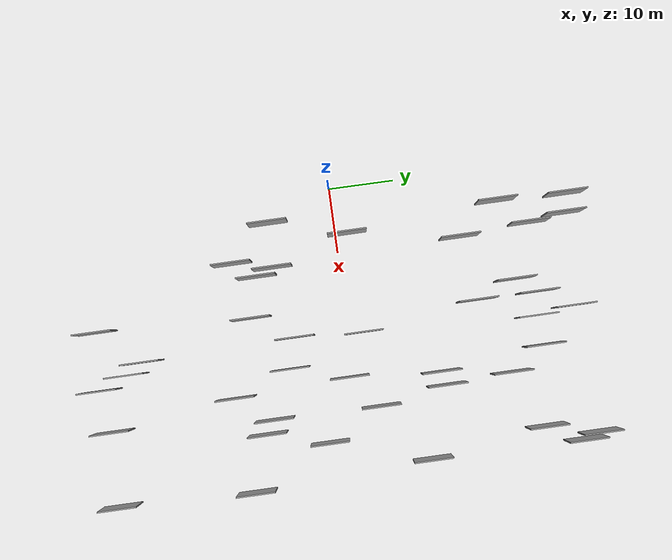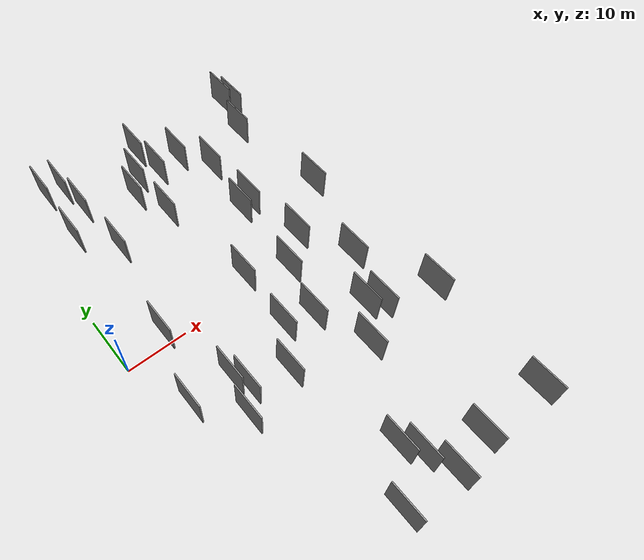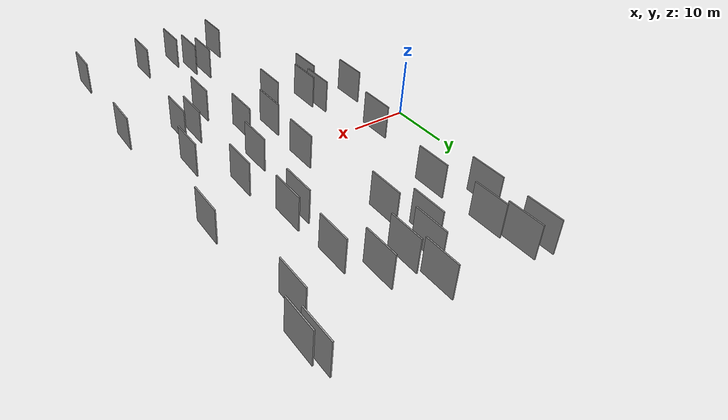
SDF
<sdf version="1.6">
 <world name="default">
  <scene>
   <sky><clouds><speed>12</speed></clouds></sky>
   <ambient>0.4 0.4 0.4 1</ambient>
   <background>0.7 0.7 0.7 1</background>
   <shadows>1</shadows>
  </scene>
  <gravity>0 0 -9.8066</gravity>
  <magnetic_field>6e-06 2.3e-05 -4.2e-05</magnetic_field>
  <physics default="0" name="default_physics" type="ode">
   <ode>
    <solver>
     <type>quick</type>
     <iters>10</iters>
     <sor>1.0</sor>
     <use_dynamic_moi_rescaling>0</use_dynamic_moi_rescaling>
    </solver>
    <constraints>
     <cfm>0</cfm>
     <erp>0.2</erp>
     <contact_max_correcting_vel>100</contact_max_correcting_vel>
     <contact_surface_layer>0.001</contact_surface_layer>
    </constraints>
   </ode>
   <max_step_size>0.004</max_step_size>
   <real_time_factor>1</real_time_factor>
   <real_time_update_rate>250</real_time_update_rate>
  </physics>
  <light name="sun" type="directional">
   <pose>0 0 10 0 0 0</pose>
   <diffuse>0.8 0.8 0.8 1</diffuse>
   <specular>0.2 0.2 0.2 1</specular>
   <attenuation>
    <range>1000</range>
    <constant>0.9</constant>
    <linear>0.01</linear>
    <quadratic>0.001</quadratic>
   </attenuation>
   <direction>-0.5 0.1 -0.9</direction>
  </light>
  <model name="grey_wall_1">
   <static>1</static>
   <pose>22.6917 -31.9498 0.0 0.000000 0.000000 1.570796</pose>
   <link name="link">
    <pose>0 0 3.00 0 0 0</pose>
    <collision name="collision"><geometry><box><size>6.00 0.2 6.00</size></box></geometry></collision>
    <visual name="visual">
     <cast_shadows>0</cast_shadows>
     <geometry><box><size>6.00 0.2 6.00</size></box></geometry>
     <material>
      <script>
       <uri>model://grey_wall/materials/scripts</uri>
       <uri>model://grey_wall/materials/textures</uri>
       <name>vrc/grey_wall</name>
      </script>
     </material>
    </visual>
   </link>
  </model>
  <model name="grey_wall_2">
   <static>1</static>
   <pose>20.2446 29.4621 0.0 0.000000 0.000000 1.570796</pose>
   <link name="link">
    <pose>0 0 3.00 0 0 0</pose>
    <collision name="collision"><geometry><box><size>6.00 0.2 6.00</size></box></geometry></collision>
    <visual name="visual">
     <cast_shadows>0</cast_shadows>
     <geometry><box><size>6.00 0.2 6.00</size></box></geometry>
     <material>
      <script>
       <uri>model://grey_wall/materials/scripts</uri>
       <uri>model://grey_wall/materials/textures</uri>
       <name>vrc/grey_wall</name>
      </script>
     </material>
    </visual>
   </link>
  </model>
  <model name="grey_wall_3">
   <static>1</static>
   <pose>44.1702 -38.2884 0.0 0.000000 0.000000 1.570796</pose>
   <link name="link">
    <pose>0 0 3.00 0 0 0</pose>
    <collision name="collision"><geometry><box><size>6.00 0.2 6.00</size></box></geometry></collision>
    <visual name="visual">
     <cast_shadows>0</cast_shadows>
     <geometry><box><size>6.00 0.2 6.00</size></box></geometry>
     <material>
      <script>
       <uri>model://grey_wall/materials/scripts</uri>
       <uri>model://grey_wall/materials/textures</uri>
       <name>vrc/grey_wall</name>
      </script>
     </material>
    </visual>
   </link>
  </model>
  <model name="grey_wall_4">
   <static>1</static>
   <pose>43.6332 33.7527 0.0 0.000000 0.000000 1.570796</pose>
   <link name="link">
    <pose>0 0 3.00 0 0 0</pose>
    <collision name="collision"><geometry><box><size>6.00 0.2 6.00</size></box></geometry></collision>
    <visual name="visual">
     <cast_shadows>0</cast_shadows>
     <geometry><box><size>6.00 0.2 6.00</size></box></geometry>
     <material>
      <script>
       <uri>model://grey_wall/materials/scripts</uri>
       <uri>model://grey_wall/materials/textures</uri>
       <name>vrc/grey_wall</name>
      </script>
     </material>
    </visual>
   </link>
  </model>
  <model name="grey_wall_5">
   <static>1</static>
   <pose>29.2713 -0.7865 0.0 0.000000 0.000000 1.570796</pose>
   <link name="link">
    <pose>0 0 3.00 0 0 0</pose>
    <collision name="collision"><geometry><box><size>6.00 0.2 6.00</size></box></geometry></collision>
    <visual name="visual">
     <cast_shadows>0</cast_shadows>
     <geometry><box><size>6.00 0.2 6.00</size></box></geometry>
     <material>
      <script>
       <uri>model://grey_wall/materials/scripts</uri>
       <uri>model://grey_wall/materials/textures</uri>
       <name>vrc/grey_wall</name>
      </script>
     </material>
    </visual>
   </link>
  </model>
  <model name="grey_wall_6">
   <static>1</static>
   <pose>22.1243 -8.2545 0.0 0.000000 0.000000 1.570796</pose>
   <link name="link">
    <pose>0 0 3.00 0 0 0</pose>
    <collision name="collision"><geometry><box><size>6.00 0.2 6.00</size></box></geometry></collision>
    <visual name="visual">
     <cast_shadows>0</cast_shadows>
     <geometry><box><size>6.00 0.2 6.00</size></box></geometry>
     <material>
      <script>
       <uri>model://grey_wall/materials/scripts</uri>
       <uri>model://grey_wall/materials/textures</uri>
       <name>vrc/grey_wall</name>
      </script>
     </material>
    </visual>
   </link>
  </model>
  <model name="grey_wall_7">
   <static>1</static>
   <pose>9.5322 29.6135 0.0 0.000000 0.000000 1.570796</pose>
   <link name="link">
    <pose>0 0 3.00 0 0 0</pose>
    <collision name="collision"><geometry><box><size>6.00 0.2 6.00</size></box></geometry></collision>
    <visual name="visual">
     <cast_shadows>0</cast_shadows>
     <geometry><box><size>6.00 0.2 6.00</size></box></geometry>
     <material>
      <script>
       <uri>model://grey_wall/materials/scripts</uri>
       <uri>model://grey_wall/materials/textures</uri>
       <name>vrc/grey_wall</name>
      </script>
     </material>
    </visual>
   </link>
  </model>
  <model name="grey_wall_8">
   <static>1</static>
   <pose>23.8840 28.7918 0.0 0.000000 0.000000 1.570796</pose>
   <link name="link">
    <pose>0 0 3.00 0 0 0</pose>
    <collision name="collision"><geometry><box><size>6.00 0.2 6.00</size></box></geometry></collision>
    <visual name="visual">
     <cast_shadows>0</cast_shadows>
     <geometry><box><size>6.00 0.2 6.00</size></box></geometry>
     <material>
      <script>
       <uri>model://grey_wall/materials/scripts</uri>
       <uri>model://grey_wall/materials/textures</uri>
       <name>vrc/grey_wall</name>
      </script>
     </material>
    </visual>
   </link>
  </model>
  <model name="grey_wall_9">
   <static>1</static>
   <pose>34.3132 3.4054 0.0 0.000000 0.000000 1.570796</pose>
   <link name="link">
    <pose>0 0 3.00 0 0 0</pose>
    <collision name="collision"><geometry><box><size>6.00 0.2 6.00</size></box></geometry></collision>
    <visual name="visual">
     <cast_shadows>0</cast_shadows>
     <geometry><box><size>6.00 0.2 6.00</size></box></geometry>
     <material>
      <script>
       <uri>model://grey_wall/materials/scripts</uri>
       <uri>model://grey_wall/materials/textures</uri>
       <name>vrc/grey_wall</name>
      </script>
     </material>
    </visual>
   </link>
  </model>
  <model name="grey_wall_10">
   <static>1</static>
   <pose>30.1226 -18.4739 0.0 0.000000 0.000000 1.570796</pose>
   <link name="link">
    <pose>0 0 3.00 0 0 0</pose>
    <collision name="collision"><geometry><box><size>6.00 0.2 6.00</size></box></geometry></collision>
    <visual name="visual">
     <cast_shadows>0</cast_shadows>
     <geometry><box><size>6.00 0.2 6.00</size></box></geometry>
     <material>
      <script>
       <uri>model://grey_wall/materials/scripts</uri>
       <uri>model://grey_wall/materials/textures</uri>
       <name>vrc/grey_wall</name>
      </script>
     </material>
    </visual>
   </link>
  </model>
  <model name="grey_wall_11">
   <static>1</static>
   <pose>28.4479 29.3044 0.0 0.000000 0.000000 1.570796</pose>
   <link name="link">
    <pose>0 0 3.00 0 0 0</pose>
    <collision name="collision"><geometry><box><size>6.00 0.2 6.00</size></box></geometry></collision>
    <visual name="visual">
     <cast_shadows>0</cast_shadows>
     <geometry><box><size>6.00 0.2 6.00</size></box></geometry>
     <material>
      <script>
       <uri>model://grey_wall/materials/scripts</uri>
       <uri>model://grey_wall/materials/textures</uri>
       <name>vrc/grey_wall</name>
      </script>
     </material>
    </visual>
   </link>
  </model>
  <model name="grey_wall_12">
   <static>1</static>
   <pose>42.7984 36.0896 0.0 0.000000 0.000000 1.570796</pose>
   <link name="link">
    <pose>0 0 3.00 0 0 0</pose>
    <collision name="collision"><geometry><box><size>6.00 0.2 6.00</size></box></geometry></collision>
    <visual name="visual">
     <cast_shadows>0</cast_shadows>
     <geometry><box><size>6.00 0.2 6.00</size></box></geometry>
     <material>
      <script>
       <uri>model://grey_wall/materials/scripts</uri>
       <uri>model://grey_wall/materials/textures</uri>
       <name>vrc/grey_wall</name>
      </script>
     </material>
    </visual>
   </link>
  </model>
  <model name="grey_wall_13">
   <static>1</static>
   <pose>5.8683 35.6910 0.0 0.000000 0.000000 1.570796</pose>
   <link name="link">
    <pose>0 0 3.00 0 0 0</pose>
    <collision name="collision"><geometry><box><size>6.00 0.2 6.00</size></box></geometry></collision>
    <visual name="visual">
     <cast_shadows>0</cast_shadows>
     <geometry><box><size>6.00 0.2 6.00</size></box></geometry>
     <material>
      <script>
       <uri>model://grey_wall/materials/scripts</uri>
       <uri>model://grey_wall/materials/textures</uri>
       <name>vrc/grey_wall</name>
      </script>
     </material>
    </visual>
   </link>
  </model>
  <model name="grey_wall_14">
   <static>1</static>
   <pose>24.3552 -34.5578 0.0 0.000000 0.000000 1.570796</pose>
   <link name="link">
    <pose>0 0 3.00 0 0 0</pose>
    <collision name="collision"><geometry><box><size>6.00 0.2 6.00</size></box></geometry></collision>
    <visual name="visual">
     <cast_shadows>0</cast_shadows>
     <geometry><box><size>6.00 0.2 6.00</size></box></geometry>
     <material>
      <script>
       <uri>model://grey_wall/materials/scripts</uri>
       <uri>model://grey_wall/materials/textures</uri>
       <name>vrc/grey_wall</name>
      </script>
     </material>
    </visual>
   </link>
  </model>
  <model name="grey_wall_15">
   <static>1</static>
   <pose>9.6066 -16.3142 0.0 0.000000 0.000000 1.570796</pose>
   <link name="link">
    <pose>0 0 3.00 0 0 0</pose>
    <collision name="collision"><geometry><box><size>6.00 0.2 6.00</size></box></geometry></collision>
    <visual name="visual">
     <cast_shadows>0</cast_shadows>
     <geometry><box><size>6.00 0.2 6.00</size></box></geometry>
     <material>
      <script>
       <uri>model://grey_wall/materials/scripts</uri>
       <uri>model://grey_wall/materials/textures</uri>
       <name>vrc/grey_wall</name>
      </script>
     </material>
    </visual>
   </link>
  </model>
  <model name="grey_wall_16">
   <static>1</static>
   <pose>10.2562 18.8156 0.0 0.000000 0.000000 1.570796</pose>
   <link name="link">
    <pose>0 0 3.00 0 0 0</pose>
    <collision name="collision"><geometry><box><size>6.00 0.2 6.00</size></box></geometry></collision>
    <visual name="visual">
     <cast_shadows>0</cast_shadows>
     <geometry><box><size>6.00 0.2 6.00</size></box></geometry>
     <material>
      <script>
       <uri>model://grey_wall/materials/scripts</uri>
       <uri>model://grey_wall/materials/textures</uri>
       <name>vrc/grey_wall</name>
      </script>
     </material>
    </visual>
   </link>
  </model>
  <model name="grey_wall_17">
   <static>1</static>
   <pose>40.8270 28.1139 0.0 0.000000 0.000000 1.570796</pose>
   <link name="link">
    <pose>0 0 3.00 0 0 0</pose>
    <collision name="collision"><geometry><box><size>6.00 0.2 6.00</size></box></geometry></collision>
    <visual name="visual">
     <cast_shadows>0</cast_shadows>
     <geometry><box><size>6.00 0.2 6.00</size></box></geometry>
     <material>
      <script>
       <uri>model://grey_wall/materials/scripts</uri>
       <uri>model://grey_wall/materials/textures</uri>
       <name>vrc/grey_wall</name>
      </script>
     </material>
    </visual>
   </link>
  </model>
  <model name="grey_wall_18">
   <static>1</static>
   <pose>31.8973 23.8797 0.0 0.000000 0.000000 1.570796</pose>
   <link name="link">
    <pose>0 0 3.00 0 0 0</pose>
    <collision name="collision"><geometry><box><size>6.00 0.2 6.00</size></box></geometry></collision>
    <visual name="visual">
     <cast_shadows>0</cast_shadows>
     <geometry><box><size>6.00 0.2 6.00</size></box></geometry>
     <material>
      <script>
       <uri>model://grey_wall/materials/scripts</uri>
       <uri>model://grey_wall/materials/textures</uri>
       <name>vrc/grey_wall</name>
      </script>
     </material>
    </visual>
   </link>
  </model>
  <model name="grey_wall_19">
   <static>1</static>
   <pose>7.3207 1.8135 0.0 0.000000 0.000000 1.570796</pose>
   <link name="link">
    <pose>0 0 3.00 0 0 0</pose>
    <collision name="collision"><geometry><box><size>6.00 0.2 6.00</size></box></geometry></collision>
    <visual name="visual">
     <cast_shadows>0</cast_shadows>
     <geometry><box><size>6.00 0.2 6.00</size></box></geometry>
     <material>
      <script>
       <uri>model://grey_wall/materials/scripts</uri>
       <uri>model://grey_wall/materials/textures</uri>
       <name>vrc/grey_wall</name>
      </script>
     </material>
    </visual>
   </link>
  </model>
  <model name="grey_wall_20">
   <static>1</static>
   <pose>5.5236 25.0917 0.0 0.000000 0.000000 1.570796</pose>
   <link name="link">
    <pose>0 0 3.00 0 0 0</pose>
    <collision name="collision"><geometry><box><size>6.00 0.2 6.00</size></box></geometry></collision>
    <visual name="visual">
     <cast_shadows>0</cast_shadows>
     <geometry><box><size>6.00 0.2 6.00</size></box></geometry>
     <material>
      <script>
       <uri>model://grey_wall/materials/scripts</uri>
       <uri>model://grey_wall/materials/textures</uri>
       <name>vrc/grey_wall</name>
      </script>
     </material>
    </visual>
   </link>
  </model>
  <model name="grey_wall_21">
   <static>1</static>
   <pose>17.8645 26.3139 0.0 0.000000 0.000000 1.570796</pose>
   <link name="link">
    <pose>0 0 3.00 0 0 0</pose>
    <collision name="collision"><geometry><box><size>6.00 0.2 6.00</size></box></geometry></collision>
    <visual name="visual">
     <cast_shadows>0</cast_shadows>
     <geometry><box><size>6.00 0.2 6.00</size></box></geometry>
     <material>
      <script>
       <uri>model://grey_wall/materials/scripts</uri>
       <uri>model://grey_wall/materials/textures</uri>
       <name>vrc/grey_wall</name>
      </script>
     </material>
    </visual>
   </link>
  </model>
  <model name="grey_wall_22">
   <static>1</static>
   <pose>34.1734 -13.0165 0.0 0.000000 0.000000 1.570796</pose>
   <link name="link">
    <pose>0 0 3.00 0 0 0</pose>
    <collision name="collision"><geometry><box><size>6.00 0.2 6.00</size></box></geometry></collision>
    <visual name="visual">
     <cast_shadows>0</cast_shadows>
     <geometry><box><size>6.00 0.2 6.00</size></box></geometry>
     <material>
      <script>
       <uri>model://grey_wall/materials/scripts</uri>
       <uri>model://grey_wall/materials/textures</uri>
       <name>vrc/grey_wall</name>
      </script>
     </material>
    </visual>
   </link>
  </model>
  <model name="grey_wall_23">
   <static>1</static>
   <pose>12.0930 -12.8128 0.0 0.000000 0.000000 1.570796</pose>
   <link name="link">
    <pose>0 0 3.00 0 0 0</pose>
    <collision name="collision"><geometry><box><size>6.00 0.2 6.00</size></box></geometry></collision>
    <visual name="visual">
     <cast_shadows>0</cast_shadows>
     <geometry><box><size>6.00 0.2 6.00</size></box></geometry>
     <material>
      <script>
       <uri>model://grey_wall/materials/scripts</uri>
       <uri>model://grey_wall/materials/textures</uri>
       <name>vrc/grey_wall</name>
      </script>
     </material>
    </visual>
   </link>
  </model>
  <model name="grey_wall_24">
   <static>1</static>
   <pose>22.7495 2.2998 0.0 0.000000 0.000000 1.570796</pose>
   <link name="link">
    <pose>0 0 3.00 0 0 0</pose>
    <collision name="collision"><geometry><box><size>6.00 0.2 6.00</size></box></geometry></collision>
    <visual name="visual">
     <cast_shadows>0</cast_shadows>
     <geometry><box><size>6.00 0.2 6.00</size></box></geometry>
     <material>
      <script>
       <uri>model://grey_wall/materials/scripts</uri>
       <uri>model://grey_wall/materials/textures</uri>
       <name>vrc/grey_wall</name>
      </script>
     </material>
    </visual>
   </link>
  </model>
  <model name="grey_wall_25">
   <static>1</static>
   <pose>20.2519 20.1538 0.0 0.000000 0.000000 1.570796</pose>
   <link name="link">
    <pose>0 0 3.00 0 0 0</pose>
    <collision name="collision"><geometry><box><size>6.00 0.2 6.00</size></box></geometry></collision>
    <visual name="visual">
     <cast_shadows>0</cast_shadows>
     <geometry><box><size>6.00 0.2 6.00</size></box></geometry>
     <material>
      <script>
       <uri>model://grey_wall/materials/scripts</uri>
       <uri>model://grey_wall/materials/textures</uri>
       <name>vrc/grey_wall</name>
      </script>
     </material>
    </visual>
   </link>
  </model>
  <model name="grey_wall_26">
   <static>1</static>
   <pose>4.1584 -10.0280 0.0 0.000000 0.000000 1.570796</pose>
   <link name="link">
    <pose>0 0 3.00 0 0 0</pose>
    <collision name="collision"><geometry><box><size>6.00 0.2 6.00</size></box></geometry></collision>
    <visual name="visual">
     <cast_shadows>0</cast_shadows>
     <geometry><box><size>6.00 0.2 6.00</size></box></geometry>
     <material>
      <script>
       <uri>model://grey_wall/materials/scripts</uri>
       <uri>model://grey_wall/materials/textures</uri>
       <name>vrc/grey_wall</name>
      </script>
     </material>
    </visual>
   </link>
  </model>
  <model name="grey_wall_27">
   <static>1</static>
   <pose>11.0273 -10.2414 0.0 0.000000 0.000000 1.570796</pose>
   <link name="link">
    <pose>0 0 3.00 0 0 0</pose>
    <collision name="collision"><geometry><box><size>6.00 0.2 6.00</size></box></geometry></collision>
    <visual name="visual">
     <cast_shadows>0</cast_shadows>
     <geometry><box><size>6.00 0.2 6.00</size></box></geometry>
     <material>
      <script>
       <uri>model://grey_wall/materials/scripts</uri>
       <uri>model://grey_wall/materials/textures</uri>
       <name>vrc/grey_wall</name>
      </script>
     </material>
    </visual>
   </link>
  </model>
  <model name="grey_wall_28">
   <static>1</static>
   <pose>17.2265 -38.5190 0.0 0.000000 0.000000 1.570796</pose>
   <link name="link">
    <pose>0 0 3.00 0 0 0</pose>
    <collision name="collision"><geometry><box><size>6.00 0.2 6.00</size></box></geometry></collision>
    <visual name="visual">
     <cast_shadows>0</cast_shadows>
     <geometry><box><size>6.00 0.2 6.00</size></box></geometry>
     <material>
      <script>
       <uri>model://grey_wall/materials/scripts</uri>
       <uri>model://grey_wall/materials/textures</uri>
       <name>vrc/grey_wall</name>
      </script>
     </material>
    </visual>
   </link>
  </model>
  <model name="grey_wall_29">
   <static>1</static>
   <pose>32.4649 13.7870 0.0 0.000000 0.000000 1.570796</pose>
   <link name="link">
    <pose>0 0 3.00 0 0 0</pose>
    <collision name="collision"><geometry><box><size>6.00 0.2 6.00</size></box></geometry></collision>
    <visual name="visual">
     <cast_shadows>0</cast_shadows>
     <geometry><box><size>6.00 0.2 6.00</size></box></geometry>
     <material>
      <script>
       <uri>model://grey_wall/materials/scripts</uri>
       <uri>model://grey_wall/materials/textures</uri>
       <name>vrc/grey_wall</name>
      </script>
     </material>
    </visual>
   </link>
  </model>
  <model name="grey_wall_30">
   <static>1</static>
   <pose>38.8206 -5.0889 0.0 0.000000 0.000000 1.570796</pose>
   <link name="link">
    <pose>0 0 3.00 0 0 0</pose>
    <collision name="collision"><geometry><box><size>6.00 0.2 6.00</size></box></geometry></collision>
    <visual name="visual">
     <cast_shadows>0</cast_shadows>
     <geometry><box><size>6.00 0.2 6.00</size></box></geometry>
     <material>
      <script>
       <uri>model://grey_wall/materials/scripts</uri>
       <uri>model://grey_wall/materials/textures</uri>
       <name>vrc/grey_wall</name>
      </script>
     </material>
    </visual>
   </link>
  </model>
  <model name="grey_wall_31">
   <static>1</static>
   <pose>30.3369 13.2092 0.0 0.000000 0.000000 1.570796</pose>
   <link name="link">
    <pose>0 0 3.00 0 0 0</pose>
    <collision name="collision"><geometry><box><size>6.00 0.2 6.00</size></box></geometry></collision>
    <visual name="visual">
     <cast_shadows>0</cast_shadows>
     <geometry><box><size>6.00 0.2 6.00</size></box></geometry>
     <material>
      <script>
       <uri>model://grey_wall/materials/scripts</uri>
       <uri>model://grey_wall/materials/textures</uri>
       <name>vrc/grey_wall</name>
      </script>
     </material>
    </visual>
   </link>
  </model>
  <model name="grey_wall_32">
   <static>1</static>
   <pose>18.2982 -14.5172 0.0 0.000000 0.000000 1.570796</pose>
   <link name="link">
    <pose>0 0 3.00 0 0 0</pose>
    <collision name="collision"><geometry><box><size>6.00 0.2 6.00</size></box></geometry></collision>
    <visual name="visual">
     <cast_shadows>0</cast_shadows>
     <geometry><box><size>6.00 0.2 6.00</size></box></geometry>
     <material>
      <script>
       <uri>model://grey_wall/materials/scripts</uri>
       <uri>model://grey_wall/materials/textures</uri>
       <name>vrc/grey_wall</name>
      </script>
     </material>
    </visual>
   </link>
  </model>
  <model name="grey_wall_33">
   <static>1</static>
   <pose>32.6602 -37.8949 0.0 0.000000 0.000000 1.570796</pose>
   <link name="link">
    <pose>0 0 3.00 0 0 0</pose>
    <collision name="collision"><geometry><box><size>6.00 0.2 6.00</size></box></geometry></collision>
    <visual name="visual">
     <cast_shadows>0</cast_shadows>
     <geometry><box><size>6.00 0.2 6.00</size></box></geometry>
     <material>
      <script>
       <uri>model://grey_wall/materials/scripts</uri>
       <uri>model://grey_wall/materials/textures</uri>
       <name>vrc/grey_wall</name>
      </script>
     </material>
    </visual>
   </link>
  </model>
  <model name="grey_wall_34">
   <static>1</static>
   <pose>43.4166 10.1234 0.0 0.000000 0.000000 1.570796</pose>
   <link name="link">
    <pose>0 0 3.00 0 0 0</pose>
    <collision name="collision"><geometry><box><size>6.00 0.2 6.00</size></box></geometry></collision>
    <visual name="visual">
     <cast_shadows>0</cast_shadows>
     <geometry><box><size>6.00 0.2 6.00</size></box></geometry>
     <material>
      <script>
       <uri>model://grey_wall/materials/scripts</uri>
       <uri>model://grey_wall/materials/textures</uri>
       <name>vrc/grey_wall</name>
      </script>
     </material>
    </visual>
   </link>
  </model>
  <model name="grey_wall_35">
   <static>1</static>
   <pose>8.8094 35.0810 0.0 0.000000 0.000000 1.570796</pose>
   <link name="link">
    <pose>0 0 3.00 0 0 0</pose>
    <collision name="collision"><geometry><box><size>6.00 0.2 6.00</size></box></geometry></collision>
    <visual name="visual">
     <cast_shadows>0</cast_shadows>
     <geometry><box><size>6.00 0.2 6.00</size></box></geometry>
     <material>
      <script>
       <uri>model://grey_wall/materials/scripts</uri>
       <uri>model://grey_wall/materials/textures</uri>
       <name>vrc/grey_wall</name>
      </script>
     </material>
    </visual>
   </link>
  </model>
  <model name="grey_wall_36">
   <static>1</static>
   <pose>23.1179 34.6564 0.0 0.000000 0.000000 1.570796</pose>
   <link name="link">
    <pose>0 0 3.00 0 0 0</pose>
    <collision name="collision"><geometry><box><size>6.00 0.2 6.00</size></box></geometry></collision>
    <visual name="visual">
     <cast_shadows>0</cast_shadows>
     <geometry><box><size>6.00 0.2 6.00</size></box></geometry>
     <material>
      <script>
       <uri>model://grey_wall/materials/scripts</uri>
       <uri>model://grey_wall/materials/textures</uri>
       <name>vrc/grey_wall</name>
      </script>
     </material>
    </visual>
   </link>
  </model>
  <model name="grey_wall_37">
   <static>1</static>
   <pose>44.8496 -17.2511 0.0 0.000000 0.000000 1.570796</pose>
   <link name="link">
    <pose>0 0 3.00 0 0 0</pose>
    <collision name="collision"><geometry><box><size>6.00 0.2 6.00</size></box></geometry></collision>
    <visual name="visual">
     <cast_shadows>0</cast_shadows>
     <geometry><box><size>6.00 0.2 6.00</size></box></geometry>
     <material>
      <script>
       <uri>model://grey_wall/materials/scripts</uri>
       <uri>model://grey_wall/materials/textures</uri>
       <name>vrc/grey_wall</name>
      </script>
     </material>
    </visual>
   </link>
  </model>
  <model name="grey_wall_38">
   <static>1</static>
   <pose>26.1688 -38.9940 0.0 0.000000 0.000000 1.570796</pose>
   <link name="link">
    <pose>0 0 3.00 0 0 0</pose>
    <collision name="collision"><geometry><box><size>6.00 0.2 6.00</size></box></geometry></collision>
    <visual name="visual">
     <cast_shadows>0</cast_shadows>
     <geometry><box><size>6.00 0.2 6.00</size></box></geometry>
     <material>
      <script>
       <uri>model://grey_wall/materials/scripts</uri>
       <uri>model://grey_wall/materials/textures</uri>
       <name>vrc/grey_wall</name>
      </script>
     </material>
    </visual>
   </link>
  </model>
  <model name="grey_wall_39">
   <static>1</static>
   <pose>36.2444 -14.3839 0.0 0.000000 0.000000 1.570796</pose>
   <link name="link">
    <pose>0 0 3.00 0 0 0</pose>
    <collision name="collision"><geometry><box><size>6.00 0.2 6.00</size></box></geometry></collision>
    <visual name="visual">
     <cast_shadows>0</cast_shadows>
     <geometry><box><size>6.00 0.2 6.00</size></box></geometry>
     <material>
      <script>
       <uri>model://grey_wall/materials/scripts</uri>
       <uri>model://grey_wall/materials/textures</uri>
       <name>vrc/grey_wall</name>
      </script>
     </material>
    </visual>
   </link>
  </model>
  <model name="grey_wall_40">
   <static>1</static>
   <pose>26.7996 -9.5902 0.0 0.000000 0.000000 1.570796</pose>
   <link name="link">
    <pose>0 0 3.00 0 0 0</pose>
    <collision name="collision"><geometry><box><size>6.00 0.2 6.00</size></box></geometry></collision>
    <visual name="visual">
     <cast_shadows>0</cast_shadows>
     <geometry><box><size>6.00 0.2 6.00</size></box></geometry>
     <material>
      <script>
       <uri>model://grey_wall/materials/scripts</uri>
       <uri>model://grey_wall/materials/textures</uri>
       <name>vrc/grey_wall</name>
      </script>
     </material>
    </visual>
   </link>
  </model>
 </world>
</sdf>
